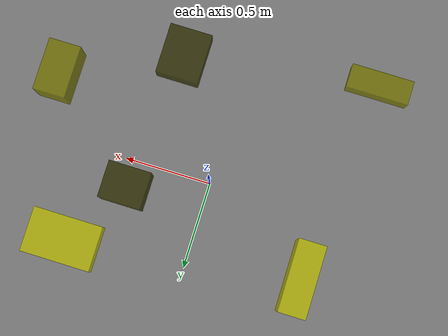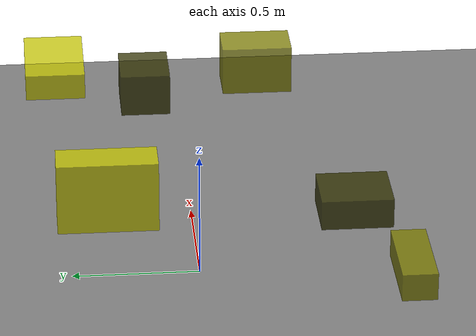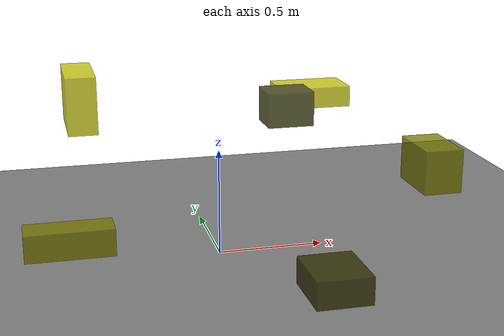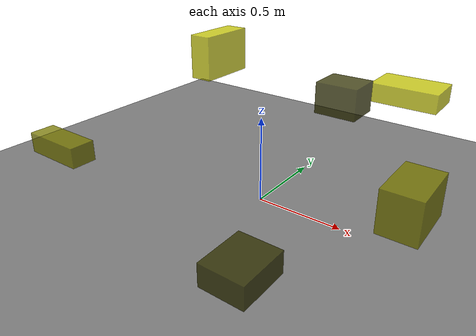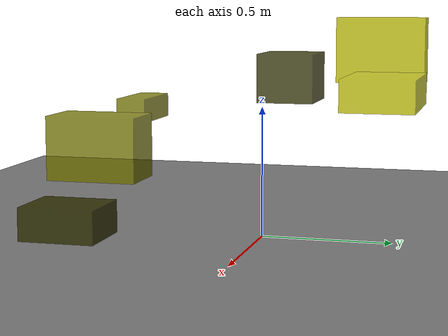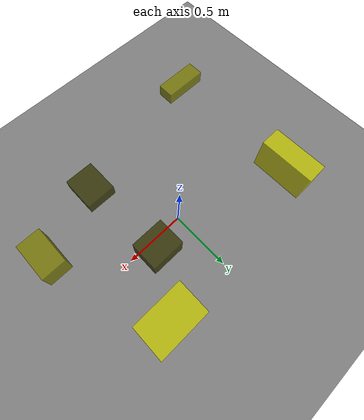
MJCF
<?xml version="1.0"?>
<mujoco model="obstacle_scene">
  <compiler angle="radian" coordinate="local"/>
  <option timestep="0.001" gravity="0 0 -9.81"/>

  <asset>
    <material name="obstacle_mat" rgba="0.8 0.8 0.0 0.8"/>
    <material name="ground_mat" rgba="0.5 0.5 0.5 1"/>
  </asset>

  <worldbody>
    <!-- Ground plane -->
    <geom name="ground" type="plane" size="3 3 0.1" material="ground_mat"/>

    <!-- Obstacles -->
    <body name="obstacle_0" pos="0.351708 -0.652274 0.099985">
      <geom name="obs_0" type="box" size="0.123192 0.145155 0.062585" rgba="0.2 0.2 0.0 0.8"/>
    </body>
    <body name="obstacle_1" pos="-0.727808 -0.734435 0.411152">
      <geom name="obs_1" type="box" size="0.168649 0.064887 0.053282" rgba="0.5 0.5 0.0 0.8"/>
    </body>
    <body name="obstacle_2" pos="-0.595810 0.377153 0.695259">
      <geom name="obs_2" type="box" size="0.069045 0.184201 0.135520" rgba="0.8 0.8 0.0 0.8"/>
    </body>
    <body name="obstacle_3" pos="0.373213 0.189782 0.647075">
      <geom name="obs_3" type="box" size="0.110648 0.095056 0.082115" rgba="0.2 0.2 0.0 0.8"/>
    </body>
    <body name="obstacle_4" pos="0.918932 -0.299525 0.460975">
      <geom name="obs_4" type="box" size="0.086300 0.140915 0.099119" rgba="0.5 0.5 0.0 0.8"/>
    </body>
    <body name="obstacle_5" pos="0.598399 0.537753 0.620366">
      <geom name="obs_5" type="box" size="0.180041 0.116267 0.051375" rgba="0.8 0.8 0.0 0.8"/>
    </body>
  </worldbody>
</mujoco>
